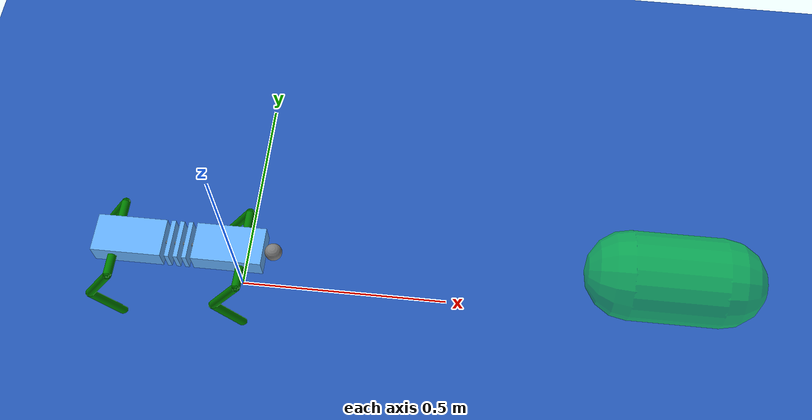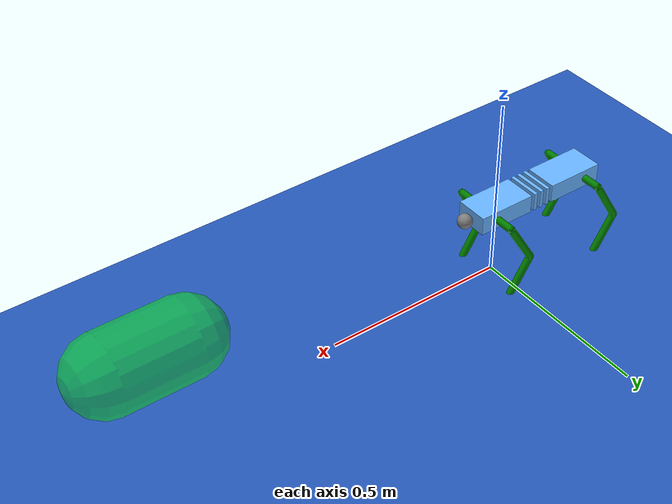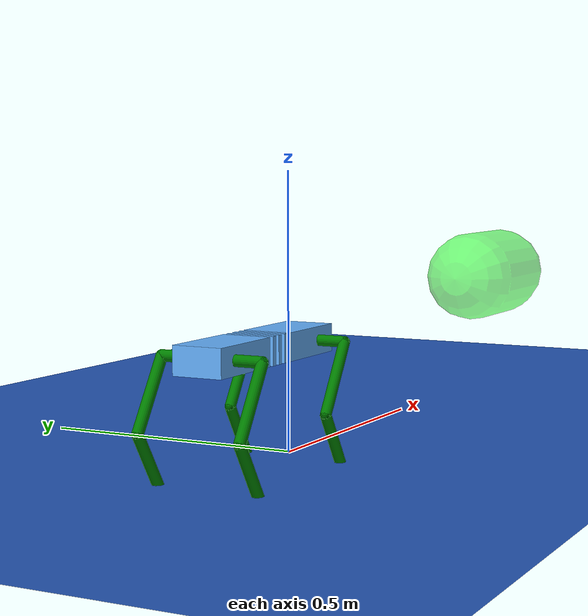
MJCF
<mujoco>
  <include file="../common.xml"/>

  <size memory="1M" />

  <default>
    <default class="circuit">
      <geom rgba="0.6 0 0.6 1" />
    </default>
  </default>

  <custom>
      <text name="task_transition" data="Quadruped|Walk|Path" />
      <numeric name="agent_planner" data="2" />
      <numeric name="agent_horizon" data="0.35" />
      <numeric name="agent_timestep" data="0.01" />
      <numeric name="sampling_spline_points" data="3" />
      <numeric name="sampling_trajectories" data="60"/>
      <numeric name="sampling_exploration" data="0.04" />
      <numeric name="gradient_spline_points" data="5" />

      <numeric name="residual_select_Gait" data="1"/>
      <text name="residual_list_Gait" data="Stand|Walk|Trot|Canter|Gallop"/>
      <numeric name="residual_select_Gait switch" data="0"/>
      <text name="residual_list_Gait switch" data="Manual|Automatic"/>
      <numeric name="residual_Cadence" data="2 0 4" />
      <numeric name="residual_Amplitude" data=".06 0 0.1" />
      <numeric name="residual_Duty ratio" data="0 0 1"/>
      <numeric name="residual_Walk speed" data="0 0 2"/>
      <numeric name="residual_Walk turn" data="0 -2 2"/>
      <numeric name="residual_Heading" data="0 -3.14 3.14" />
      <numeric name="residual_select_Posture" data="1"/>
      <text name="residual_list_Posture" data="Low|Normal|High|Left|Right"/>
      <numeric name="residual_Spinal angle Z" data="0 -0.84 0.84" />
      <numeric name="residual_Spinal angle Y" data="0 -0.84 0.84" />
      <numeric name="residual_Chest height" data="0.2 0.15 0.25" />
      <numeric name="residual_select_Path stage" data="0" />
      <text name="residual_list_Path stage" data="Loop|Stage1|Stage2|Stage3|Stage4|Stage5" />

  </custom>

  <visual>
      <headlight diffuse="0.6 0.6 0.6"  ambient="0.3 0.3 0.3" specular="0 0 0"/>
      <global azimuth="-90"/>
  </visual>

  <statistic extent="1" center="0 0 .3"/>

  <worldbody>
      <light pos="0 0 1.5" dir="0 0 -1" diffuse="0.5 0.5 0.5" specular="0.3 0.3 0.3"
      directional="true" castshadow="false"/>

      <geom name="floor" size="0 0 0.1" pos="0 0 -0.01" type="plane" material="blue_grid"/>

      <body name="goal" mocap="true" pos="1 0 0.25" quat="1 0 0 0">
        <geom type="capsule" size="0.1 0.1 0.05" contype="0" conaffinity="0" rgba="0 1 0 .5" fromto="-0.1 0 0 0.1 0 0"/>
      </body>

  </worldbody>

  <include file="robot_multijoint_spine.xml"/>

  <actuator>
      <motor name="Spine1-Y" joint="Spine1-Y" gear="1" ctrllimited="true" ctrlrange="-15 15"/>
      <motor name="Spine1-Z" joint="Spine1-Z" gear="1" ctrllimited="true" ctrlrange="-15 15"/>
      <motor name="Spine2-Y" joint="Spine2-Y" gear="1" ctrllimited="true" ctrlrange="-15 15"/>
      <motor name="Spine2-Z" joint="Spine2-Z" gear="1" ctrllimited="true" ctrlrange="-15 15"/>
      <motor name="Spine3-Y" joint="Spine3-Y" gear="1" ctrllimited="true" ctrlrange="-15 15"/>
      <motor name="Spine3-Z" joint="Spine3-Z" gear="1" ctrllimited="true" ctrlrange="-15 15"/>
      <motor name="Hip-Y" joint="Hip-Y" gear="1" ctrllimited="true" ctrlrange="-15 15"/>
      <motor name="Hip-Z" joint="Hip-Z" gear="1" ctrllimited="true" ctrlrange="-15 15"/>

      <motor name="FL_Abduction" joint="AbductionJoint_FL" gear="1" ctrllimited="true" ctrlrange="-15 15"/>
      <motor name="FL_Up" joint="HipJoint_FL" gear="1" ctrllimited="true" ctrlrange="-15 15"/>
      <motor name="FL_Down" joint="KneeJoint_FL" gear="1" ctrllimited="true" ctrlrange="-15 15"/>

      <motor name="FR_Abduction" joint="AbductionJoint_FR" gear="1" ctrllimited="true" ctrlrange="-15 15"/>
      <motor name="FR_Up" joint="HipJoint_FR" gear="1" ctrllimited="true" ctrlrange="-15 15"/>
      <motor name="FR_Down" joint="KneeJoint_FR" gear="1" ctrllimited="true" ctrlrange="-15 15"/>

      <motor name="RL_Abduction" joint="AbductionJoint_RL" gear="1" ctrllimited="true" ctrlrange="-15 15"/>
      <motor name="RL_Up" joint="HipJoint_RL" gear="1" ctrllimited="true" ctrlrange="-15 15"/>
      <motor name="RL_Down" joint="KneeJoint_RL" gear="1" ctrllimited="true" ctrlrange="-15 15"/>

      <motor name="RR_Abduction" joint="AbductionJoint_RR" gear="1" ctrllimited="true" ctrlrange="-15 15"/>
      <motor name="RR_Up" joint="HipJoint_RR" gear="1" ctrllimited="true" ctrlrange="-15 15"/>
      <motor name="RR_Down" joint="KneeJoint_RR" gear="1" ctrllimited="true" ctrlrange="-15 15"/>
  </actuator>

  <sensor>
      <user name="Upright" dim="3" user="6 1 0 3 0.05" />
      <user name="Height" dim="1" user="6 1 0 3 0.04" />
      <user name="Position" dim="3" user="2 0.2 0 3 0.1" />
      <user name="Gait" dim="4" user="6 2 0 10 0.03" />
      <user name="Balance" dim="2" user="2 0.2 0 0.3 0.1" />
      <user name="Effort" dim="20" user="0 0.03 0.0 0.1" />
      <user name="Posture" dim="20" user="0 0.2 0.0 10" />
      <user name="Orientation" dim="2" user="0 0.1 0 2" />
      <user name="Angmom" dim="3" user="0 0 0 .03" />
      <user name="Consistency" dim="1" user="6 0.1 0 1 0.05"/>

      <framepos name="trace0" objtype="site" objname="head" />
      <subtreecom name="torso_subtreecom" body="COM" />
      <subtreelinvel name="torso_subtreelinvel" body="main_body"/>
      <subtreeangmom name="torso_angmom" body="main_body"/>
      <framequat     name="orientation" objtype="body" objname="main_body"/>
      <touch name="Foot_FL_sensor" site="Foot_FL_contact"/>
      <touch name="Foot_FR_sensor" site="Foot_FR_contact"/>
      <touch name="Foot_RL_sensor" site="Foot_RL_contact"/>
      <touch name="Foot_RR_sensor" site="Foot_RR_contact"/>

    </sensor>

    <keyframe>

      <!-- Path Stages -->
      <key mpos="1 0 0.25" mquat="1 0 0 0" />

      <!-- circuit -->

      <!-- turn 0.0m -->
      <key mpos="0.50 -5.00 0.25" mquat="0.707106781186548 0 0 -0.707106781186547" />

      <!-- turn 1 m -->

      <!-- turn 2 m -->

      <!-- turn 3 m -->

      <!-- inclination 5 deg, goalY:0.685, goalX: 5,981 -->

      <!-- inclination 10 deg goalY:1.118, goalX: 5,924-->

      <!-- inclination 15 deg goalY:1.544, goalX: 5,824-->

      <!-- front left leg joints -->
      <!-- front right leg joints -->

      <!-- spine joints  -->

      <!-- frontlimb spine joint -->
      <!-- hind left leg joints -->
      <!-- hind right leg joints -->

      <key name="low"
        qpos="
        0 0 0.2
        1 0 0 0

        0 0.5 0.15
        0 0.5 0.15

        0.2 0
        0.2 0
        0.2 0
        0.2 0

        0 -0.42 0.21
        0 -0.42 0.21"/>

      <key name="home"
          qpos="
          0 0 0.2
          1 0 0 0

          0 0 0
          0 0 0

          0 0
          0 0
          0 0
          0 0

          0 0 0
          0 0 0"/>

    <key name="high"
        qpos="
        0 0 0.2
        1 0 0 0

        0 0.0 0.1
        0 0.0 0.1

        -0.2 0
        -0.2 0
        -0.2 0
        -0.2 0

        0 0.38 0.25
        0 0.38 0.25"/>

    <key name="left"
        qpos="
        0 0 0.2
        1 0 0 0

        0 0 0
        0 0 0

        0 -0.2
        0 -0.2
        0 -0.2
        0 -0.2

        0 0 0
        0 0 0"/>

    <key name="right"
        qpos="
        0 0 0.2
        1 0 0 0

        0 0 0
        0 0 0

        0 0.2
        0 0.2
        0 0.2
        0 0.2

        0 0 0
        0 0 0"/>

    </keyframe>

</mujoco>

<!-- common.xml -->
<mujoco>

    <visual>
        <headlight ambient=".4 .4 .4" diffuse=".8 .8 .8" specular="0.1 0.1 0.1"/>
        <map znear=".01"/>
        <quality shadowsize="2048"/>
        <global elevation="-15"/>
    </visual>

    <asset>
        <texture name="blue_grid" type="2d" builtin="checker" rgb1=".02 .14 .44" rgb2=".27 .55 1" width="300" height="300" mark="edge" markrgb="1 1 1"/>
        <material name="blue_grid" texture="blue_grid" texrepeat="1 1" texuniform="true" reflectance=".2"/>

        <texture name="grey_grid" type="2d" builtin="checker" rgb1=".26 .26 .26" rgb2=".6 .6 .6" width="300" height="300" mark="edge" markrgb="1 1 1"/>
        <material name="grey_grid" texture="grey_grid" texrepeat="1 1" texuniform="true" reflectance=".2"/>
        <texture name="skybox" type="skybox" builtin="gradient" rgb1=".66 .79 1" rgb2=".9 .91 .93" width="800" height="800"/>

        <material name="self" rgba=".7 .5 .3 1"/>
        <material name="self_default" rgba=".7 .5 .3 1"/>
        <material name="self_highlight" rgba="0 .5 .3 1"/>
        <material name="effector" rgba=".7 .4 .2 1"/>
        <material name="effector_default" rgba=".7 .4 .2 1"/>
        <material name="effector_highlight" rgba="0 .5 .3 1"/>
        <material name="decoration" rgba=".2 .6 .3 1"/>
        <material name="eye" rgba="0 .2 1 1"/>
        <material name="target" rgba=".6 .3 .3 1"/>
        <material name="target_default" rgba=".6 .3 .3 1"/>
        <material name="target_highlight" rgba=".6 .3 .3 .4"/>
        <material name="site" rgba=".5 .5 .5 .3"/>
    </asset>

    <size memory="1M"/>

    <statistic extent="0.4" center="0.3 0.1 0"/>

    <visual>
        <quality shadowsize="8192"/>
        <global azimuth="180" elevation="-30"/>
    </visual>

    <default>
        <geom friction="1.0"/>
    </default>

    <compiler angle="radian" autolimits="true"/>

    <asset>
        <mesh name="apple" file="../../shared_assets/apple/apple.obj" />
        <mesh name="apple_contact0" file="../../shared_assets/apple/contact0.stl"  />
        <mesh name="apple_contact1" file="../../shared_assets/apple/contact1.stl"  />

        <mesh name="doorknob" file="../../shared_assets/doorknob/doorknob.obj" />

        <mesh name="flashlight" file="../../shared_assets/flashlight/flashlight.obj" />
        <mesh name="flashlight_contact0" file="../../shared_assets/flashlight/contact0.stl"  />
        <mesh name="flashlight_contact1" file="../../shared_assets/flashlight/contact1.stl"  />

        <mesh name="hammer" file="../../shared_assets/hammer/hammer.obj" />
        <mesh name="hammer_contact0" file="../../shared_assets/hammer/contact0.stl"  />
        <mesh name="hammer_contact1" file="../../shared_assets/hammer/contact1.stl"  />

        <mesh name="phone" file="../../shared_assets/phone/phone.obj" />
        <mesh name="phone_contact0" file="../../shared_assets/phone/contact0.stl"  />
        <mesh name="phone_contact1" file="../../shared_assets/phone/contact1.stl"  />
        <mesh name="phone_contact2" file="../../shared_assets/phone/contact2.stl"  />

        <mesh name="stapler" file="../../shared_assets/stapler/stapler.obj" />
        <mesh name="stapler_contact0" file="../../shared_assets/stapler/contact0.stl"  />
        <mesh name="stapler_contact1" file="../../shared_assets/stapler/contact1.stl"  />
        <mesh name="stapler_contact2" file="../../shared_assets/stapler/contact2.stl"  />
        <mesh name="stapler_contact3" file="../../shared_assets/stapler/contact3.stl"  />
        <mesh name="stapler_contact4" file="../../shared_assets/stapler/contact4.stl"  />

        <mesh name="waterbottle" file="../../shared_assets/waterbottle/waterbottle.obj" />
        <mesh name="waterbottle_contact0" file="../../shared_assets/waterbottle/contact0.stl"  />
        <mesh name="waterbottle_contact1" file="../../shared_assets/waterbottle/contact1.stl"  />
    </asset>

</mujoco>

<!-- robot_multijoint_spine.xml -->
<mujoco>

    <default>

        <default class="group1">
            <geom group="1" />
            <joint group="1" />

            <default class="limbs">

                <default class="Spine">
                    <geom mass="0.001" type="box" size="0.005 0.045 0.025" rgba="0.4 0.7 1.0 1" group="1"/>
                </default>

                <default class="SpineConnector">
                    <geom type="sphere" size="0.005" group="1"/>
                </default>

                <default class="Limb">
                    <geom mass="1.5" type="box" size="0.08 0.045 0.025" rgba="0.4 0.7 1.0 1" group="1"/>
                </default>

                <default class="AbductionGeom">
                    <geom type="capsule" mass="0.001" size="0.01" rgba="0.0 0.5 0.0 1" group="1"/>
                </default>

                <default class="UpLeg">
                    <geom type="capsule" mass="0.05" size="0.01" fromto="0 0 0 -0.14 0 0" rgba="0.0 0.5 0.0 1" group="1"/>
                </default>

                <default class="DownLeg">
                    <geom type="capsule" mass="0.05" size="0.01" fromto="0 0 0 0.14 0 0" rgba="0.0 0.5 0.0 1" group="1"/>
                </default>

                <default class="Foot">
                    <geom type="sphere" mass="0.001" size="0.02" rgba="1.0 1.0 0.1 1" friction="2 0.02 0.01" group="1"/>
                </default>

            </default>

            <default class="joints">

                <default class="spine-z-joint">
                    <joint limited="true" range="-12 12" type="hinge"
                        stiffness="0" damping="0.1" armature="0.0065"
                        />
                </default>

                <default class="spine-y-joint">
                    <joint limited="true" range="-12 12" type="hinge"
                        axis="0 1 0" stiffness="0" damping="0.1" armature="0.0065" />
                </default>

                <default class="abduction_joint">
                    <joint limited="true" range="-20 20" type="hinge"
                        axis="1 0 0" stiffness="0" damping="0.1" armature="0.0065" />
                </default>

                <default class="hip_joint">
                    <joint limited="true" range="-40 40" type="hinge"
                        axis="0 1 0" stiffness="0" damping="0.1" armature="0.0065" />
                </default>

                <default class="knee_joint">
                    <joint limited="true" range="-30 30" type="hinge"
                        axis="0 1 0" stiffness="0" damping="0.1" armature="0.0065" />
                </default>

            </default>
        </default>

    </default>

    <worldbody>
        <body name="main_body" pos="0 0 0.2" euler="0 0 0" childclass="group1">

            <joint name="rail" type="free"/>

            <geom name="Frontlimb" class="Limb"/>

            <site name="head" pos="0.1 0 0" size="0.02"/>

            <body name="FL" pos="0.03 0.045 0">
                <body name="LegFrame_FL">
                    <joint name="AbductionJoint_FL" class="abduction_joint"/>
                    <geom name="Abduction_FL" class="AbductionGeom" fromto="0 0 0 0 0.05 0"/>

                    <body name="UpLegFrame_FL" pos="0 0.05 0" euler="0 -45 0">
                        <joint name="HipJoint_FL" class="hip_joint" />
                        <geom name="UpLeg_FL" class="UpLeg"/>

                        <body name="DownLegFrame_FL" pos="-0.14 0 0" euler="0 90 0">
                            <joint name="KneeJoint_FL" class="knee_joint" />
                            <geom name="DownLeg_FL" class="DownLeg"/>

                            <body name="FootFrame_FL" pos="0.14 0 0">
                                <geom name="Foot_FL" class="Foot"/>
                                <site name="Foot_FL_contact" size="0.021"/>
                            </body>
                        </body>
                    </body>
                </body>
            </body>

            <body name="FR" pos="0.03 -0.045 0">
                <body name="LegFrame_FR">
                    <joint name="AbductionJoint_FR" class="abduction_joint"/>
                    <geom name="Abduction_FR" class="AbductionGeom" fromto="0 0 0 0 -0.05 0"/>

                    <body name="UpLegFrame_FR" pos="0 -0.05 0" euler="0 -45 0">
                        <joint name="HipJoint_FR" class="hip_joint" />
                        <geom name="UpLeg_FR" class="UpLeg"/>

                        <body name="DownLegFrame_FR" pos="-0.14 0 0" euler="0 90 0">
                            <joint name="KneeJoint_FR" class="knee_joint"/>
                            <geom name="DownLeg_FR" class="DownLeg"/>

                            <body name="FootFrame_FR" pos="0.14 0 0">
                                <geom name="Foot_FR" class="Foot"/>
                                <site name="Foot_FR_contact" size="0.021"/>
                            </body>
                        </body>
                    </body>
                </body>
            </body>

            <body name="T1" pos="-0.085 0 0">

                <joint name="Spine1-Y" class="spine-y-joint"/>
                <joint name="Spine1-Z" class="spine-z-joint"/>

                <geom name="T1-Connector" class="SpineConnector"/>
                <geom name="T1" class="Spine" pos="-0.01 0 0"/>

                <body name="T2" pos="-0.02 0 0">

                    <joint name="Spine2-Y" class="spine-y-joint"/>
                    <joint name="Spine2-Z" class="spine-z-joint"/>

                    <geom name="T2-Connector" class="SpineConnector"/>
                    <geom name="T2" class="Spine" pos="-0.01 0 0"/>

                    <body name="COM" pos="-0.01 0 0"></body>

                    <body name="T3" pos="-0.02 0 0">

                        <joint name="Spine3-Y" class="spine-y-joint"/>
                        <joint name="Spine3-Z" class="spine-z-joint"/>

                        <geom name="T3-Connector" class="SpineConnector"/>
                        <geom name="T3" class="Spine" pos="-0.01 0 0"/>

                        <body name="Hindlimb" pos="-0.02 0 0">

                            <joint name="Hip-Y" class="spine-y-joint"/>
                            <joint name="Hip-Z" class="spine-z-joint"/>

                            <geom name="Hip-Connector" class="SpineConnector"/>
                            <geom name="HindLimb" class="Limb" pos="-0.085 0 0"/>

                            <body name="RL" pos="-0.12 0.044 0">
                                <body name="LegFrame_RL">
                                    <joint name="AbductionJoint_RL" class="abduction_joint"/>
                                    <geom name="Abduction_RL" class="AbductionGeom" fromto="0 0 0 0 0.05 0"/>

                                    <body name="UpLegFrame_RL" pos="0 0.05 0" euler="0 -45 0">
                                        <joint name="HipJoint_RL" class="hip_joint" />
                                        <geom name="UpLeg_RL" class="UpLeg"/>

                                        <body name="DownLegFrame_RL" pos="-0.14 0 0" euler="0 90 0">
                                            <joint name="KneeJoint_RL" class="knee_joint" />
                                            <geom name="DownLeg_RL" class="DownLeg"/>

                                            <body name="FootFrame_RL" pos="0.14 0 0">
                                                <geom name="Foot_RL" class="Foot"/>
                                                <site name="Foot_RL_contact" size="0.021"/>
                                            </body>
                                        </body>
                                    </body>
                                </body>
                            </body>

                            <body name="RR" pos="-0.12 -0.044 0">
                                <body name="LegFrame_RR">
                                    <joint name="AbductionJoint_RR" class="abduction_joint"/>
                                    <geom name="Abduction_RR" class="AbductionGeom" fromto="0 0 0 0 -0.05 0"/>

                                    <body name="UpLegFrame_RR" pos="0 -0.05 0" euler="0 -45 0">
                                        <joint name="HipJoint_RR" class="hip_joint" />
                                        <geom name="UpLeg_RR" class="UpLeg"/>

                                        <body name="DownLegFrame_RR" pos="-0.14 0 0" euler="0 90 0">
                                            <joint name="KneeJoint_RR" class="knee_joint" />
                                            <geom name="DownLeg_RR" class="DownLeg"/>

                                            <body name="FootFrame_RR" pos="0.14 0 0">
                                                <geom name="Foot_RR" class="Foot"/>
                                                <site name="Foot_RR_contact" size="0.021"/>
                                            </body>
                                        </body>
                                    </body>
                                </body>
                            </body>
                        </body>
                    </body>
                </body>
            </body>
        </body>
    </worldbody>
</mujoco>
